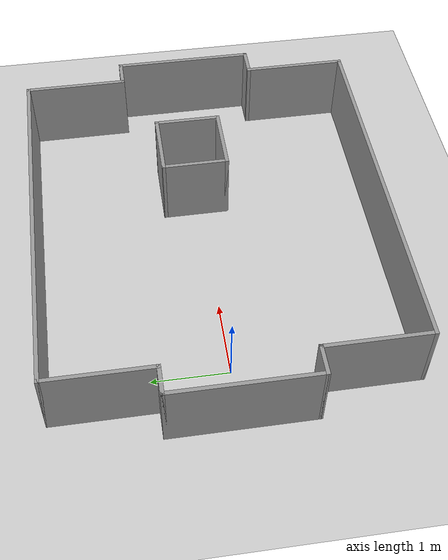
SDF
<sdf version="1.6">
 <world name="default">
  <light name="sun" type="directional">
   <pose>0 0 10 0 -0 0</pose>
   <diffuse>0.8 0.8 0.8 1</diffuse>
   <specular>0.2 0.2 0.2 1</specular>
   <attenuation>
    <range>1000</range>
    <constant>0.9</constant>
    <linear>0.01</linear>
    <quadratic>0.001</quadratic>
   </attenuation>
   <direction>-0.5 0.1 -0.9</direction>
  </light>
  <model name="ground_plane">
   <static>1</static>
   <link name="link">
    <collision name="collision">
     <geometry><plane><normal>0 0 1</normal><size>100 100</size></plane></geometry>
     <surface><friction><ode><mu>100</mu><mu2>50</mu2></ode></friction></surface>
    </collision>
    <visual name="visual">
     <cast_shadows>0</cast_shadows>
     <geometry><plane><normal>0 0 1</normal><size>100 100</size></plane></geometry>
     <material>
      <script><uri>file://media/materials/scripts/gazebo.material</uri><name>Gazebo/Grey</name></script>
     </material>
    </visual>
   </link>
  </model>
  <gravity>0 0 -9.8</gravity>
  <magnetic_field>6e-06 2.3e-05 -4.2e-05</magnetic_field>
  <atmosphere type="adiabatic"/>
  <physics name="default_physics" default="0" type="ode">
   <max_step_size>0.001</max_step_size>
   <real_time_factor>1</real_time_factor>
   <real_time_update_rate>1000</real_time_update_rate>
  </physics>
  <scene><ambient>0.4 0.4 0.4 1</ambient><background>0.7 0.7 0.7 1</background><shadows>1</shadows></scene>
  <spherical_coordinates>
   <surface_model>EARTH_WGS84</surface_model>
   <latitude_deg>0</latitude_deg>
   <longitude_deg>0</longitude_deg>
   <elevation>0</elevation>
   <heading_deg>0</heading_deg>
  </spherical_coordinates>
  <model name="rgarena2-0">
   <pose>2.02 -0.03 0 0 0 -1.56997</pose>
   <link name="Wall_0">
    <collision name="Wall_0_Collision">
     <geometry><box><size>4.9 0.05 1</size></box></geometry>
     <pose>0 0 0.5 0 -0 0</pose>
    </collision>
    <visual name="Wall_0_Visual">
     <pose>0 0 0.5 0 -0 0</pose>
     <geometry><box><size>4.9 0.05 1</size></box></geometry>
     <material>
      <script><uri>file://media/materials/scripts/gazebo.material</uri><name>Gazebo/Grey</name></script>
      <ambient>1 1 1 1</ambient>
     </material>
     <meta><layer>0</layer></meta>
    </visual>
    <pose>-2.275 -0 0 0 -0 -1.5708</pose>
   </link>
   <link name="Wall_1">
    <collision name="Wall_1_Collision">
     <geometry><box><size>1.4 0.05 1</size></box></geometry>
     <pose>0 0 0.5 0 -0 0</pose>
    </collision>
    <visual name="Wall_1_Visual">
     <pose>0 0 0.5 0 -0 0</pose>
     <geometry><box><size>1.4 0.05 1</size></box></geometry>
     <material>
      <script><uri>file://media/materials/scripts/gazebo.material</uri><name>Gazebo/Grey</name></script>
      <ambient>1 1 1 1</ambient>
     </material>
     <meta><layer>0</layer></meta>
    </visual>
    <pose>-1.6 -2.425 0 0 -0 0</pose>
   </link>
   <link name="Wall_13">
    <collision name="Wall_13_Collision">
     <geometry><box><size>1.9 0.05 1</size></box></geometry>
     <pose>0 0 0.5 0 -0 0</pose>
    </collision>
    <visual name="Wall_13_Visual">
     <pose>0 0 0.5 0 -0 0</pose>
     <geometry><box><size>1.9 0.05 1</size></box></geometry>
     <material>
      <script><uri>file://media/materials/scripts/gazebo.material</uri><name>Gazebo/Grey</name></script>
      <ambient>1 1 1 1</ambient>
     </material>
     <meta><layer>0</layer></meta>
    </visual>
    <pose>-0 2.775 0 0 -0 3.14159</pose>
   </link>
   <link name="Wall_14">
    <collision name="Wall_14_Collision">
     <geometry><box><size>0.4 0.05 1</size></box></geometry>
     <pose>0 0 0.5 0 -0 0</pose>
    </collision>
    <visual name="Wall_14_Visual">
     <pose>0 0 0.5 0 -0 0</pose>
     <geometry><box><size>0.4 0.05 1</size></box></geometry>
     <material>
      <script><uri>file://media/materials/scripts/gazebo.material</uri><name>Gazebo/Grey</name></script>
      <ambient>1 1 1 1</ambient>
     </material>
     <meta><layer>0</layer></meta>
    </visual>
    <pose>-0.925 2.6 0 0 -0 -1.5708</pose>
   </link>
   <link name="Wall_15">
    <collision name="Wall_15_Collision">
     <geometry><box><size>1.4 0.05 1</size></box></geometry>
     <pose>0 0 0.5 0 -0 0</pose>
    </collision>
    <visual name="Wall_15_Visual">
     <pose>0 0 0.5 0 -0 0</pose>
     <geometry><box><size>1.4 0.05 1</size></box></geometry>
     <material>
      <script><uri>file://media/materials/scripts/gazebo.material</uri><name>Gazebo/Grey</name></script>
      <ambient>1 1 1 1</ambient>
     </material>
     <meta><layer>0</layer></meta>
    </visual>
    <pose>-1.6 2.425 0 0 -0 3.14159</pose>
   </link>
   <link name="Wall_17">
    <collision name="Wall_17_Collision">
     <geometry><box><size>0.9 0.05 1</size></box></geometry>
     <pose>0 0 0.5 0 -0 0</pose>
    </collision>
    <visual name="Wall_17_Visual">
     <pose>0 0 0.5 0 -0 0</pose>
     <geometry><box><size>0.9 0.05 1</size></box></geometry>
     <material>
      <script><uri>file://media/materials/scripts/gazebo.material</uri><name>Gazebo/Grey</name></script>
      <ambient>1 1 1 1</ambient>
     </material>
     <meta><layer>0</layer></meta>
    </visual>
    <pose>-0.529 1.061 0 0 -0 -1.5708</pose>
   </link>
   <link name="Wall_18">
    <collision name="Wall_18_Collision">
     <geometry><box><size>0.9 0.05 1</size></box></geometry>
     <pose>0 0 0.5 0 -0 0</pose>
    </collision>
    <visual name="Wall_18_Visual">
     <pose>0 0 0.5 0 -0 0</pose>
     <geometry><box><size>0.9 0.05 1</size></box></geometry>
     <material>
      <script><uri>file://media/materials/scripts/gazebo.material</uri><name>Gazebo/Grey</name></script>
      <ambient>1 1 1 1</ambient>
     </material>
     <meta><layer>0</layer></meta>
    </visual>
    <pose>-0.104 0.636 0 0 -0 0</pose>
   </link>
   <link name="Wall_19">
    <collision name="Wall_19_Collision">
     <geometry><box><size>0.9 0.05 1</size></box></geometry>
     <pose>0 0 0.5 0 -0 0</pose>
    </collision>
    <visual name="Wall_19_Visual">
     <pose>0 0 0.5 0 -0 0</pose>
     <geometry><box><size>0.9 0.05 1</size></box></geometry>
     <material>
      <script><uri>file://media/materials/scripts/gazebo.material</uri><name>Gazebo/Grey</name></script>
      <ambient>1 1 1 1</ambient>
     </material>
     <meta><layer>0</layer></meta>
    </visual>
    <pose>0.321 1.061 0 0 -0 1.5708</pose>
   </link>
   <link name="Wall_2">
    <collision name="Wall_2_Collision">
     <geometry><box><size>0.4 0.05 1</size></box></geometry>
     <pose>0 0 0.5 0 -0 0</pose>
    </collision>
    <visual name="Wall_2_Visual">
     <pose>0 0 0.5 0 -0 0</pose>
     <geometry><box><size>0.4 0.05 1</size></box></geometry>
     <material>
      <script><uri>file://media/materials/scripts/gazebo.material</uri><name>Gazebo/Grey</name></script>
      <ambient>1 1 1 1</ambient>
     </material>
     <meta><layer>0</layer></meta>
    </visual>
    <pose>-0.925 -2.6 0 0 -0 -1.5708</pose>
   </link>
   <link name="Wall_20">
    <collision name="Wall_20_Collision">
     <geometry><box><size>0.9003 0.05 1</size></box></geometry>
     <pose>0 0 0.5 0 -0 0</pose>
    </collision>
    <visual name="Wall_20_Visual">
     <pose>0 0 0.5 0 -0 0</pose>
     <geometry><box><size>0.9003 0.05 1</size></box></geometry>
     <material>
      <script><uri>file://media/materials/scripts/gazebo.material</uri><name>Gazebo/Grey</name></script>
      <ambient>1 1 1 1</ambient>
     </material>
     <meta><layer>0</layer></meta>
    </visual>
    <pose>-0.104 1.486 0 0 -0 3.14159</pose>
   </link>
   <link name="Wall_3">
    <collision name="Wall_3_Collision">
     <geometry><box><size>1.9 0.05 1</size></box></geometry>
     <pose>0 0 0.5 0 -0 0</pose>
    </collision>
    <visual name="Wall_3_Visual">
     <pose>0 0 0.5 0 -0 0</pose>
     <geometry><box><size>1.9 0.05 1</size></box></geometry>
     <material>
      <script><uri>file://media/materials/scripts/gazebo.material</uri><name>Gazebo/Grey</name></script>
      <ambient>1 1 1 1</ambient>
     </material>
     <meta><layer>0</layer></meta>
    </visual>
    <pose>-0 -2.775 0 0 -0 0</pose>
   </link>
   <link name="Wall_4">
    <collision name="Wall_4_Collision">
     <geometry><box><size>0.4 0.05 1</size></box></geometry>
     <pose>0 0 0.5 0 -0 0</pose>
    </collision>
    <visual name="Wall_4_Visual">
     <pose>0 0 0.5 0 -0 0</pose>
     <geometry><box><size>0.4 0.05 1</size></box></geometry>
     <material>
      <script><uri>file://media/materials/scripts/gazebo.material</uri><name>Gazebo/Grey</name></script>
      <ambient>1 1 1 1</ambient>
     </material>
     <meta><layer>0</layer></meta>
    </visual>
    <pose>0.925 -2.6 0 0 -0 1.5708</pose>
   </link>
   <link name="Wall_5">
    <collision name="Wall_5_Collision">
     <geometry><box><size>1.4 0.05 1</size></box></geometry>
     <pose>0 0 0.5 0 -0 0</pose>
    </collision>
    <visual name="Wall_5_Visual">
     <pose>0 0 0.5 0 -0 0</pose>
     <geometry><box><size>1.4 0.05 1</size></box></geometry>
     <material>
      <script><uri>file://media/materials/scripts/gazebo.material</uri><name>Gazebo/Grey</name></script>
      <ambient>1 1 1 1</ambient>
     </material>
     <meta><layer>0</layer></meta>
    </visual>
    <pose>1.6 -2.425 0 0 -0 0</pose>
   </link>
   <link name="Wall_6">
    <collision name="Wall_6_Collision">
     <geometry><box><size>4.9 0.05 1</size></box></geometry>
     <pose>0 0 0.5 0 -0 0</pose>
    </collision>
    <visual name="Wall_6_Visual">
     <pose>0 0 0.5 0 -0 0</pose>
     <geometry><box><size>4.9 0.05 1</size></box></geometry>
     <material>
      <script><uri>file://media/materials/scripts/gazebo.material</uri><name>Gazebo/Grey</name></script>
      <ambient>1 1 1 1</ambient>
     </material>
     <meta><layer>0</layer></meta>
    </visual>
    <pose>2.275 -0 0 0 -0 1.5708</pose>
   </link>
   <link name="Wall_7">
    <collision name="Wall_7_Collision">
     <geometry><box><size>1.4 0.05 1</size></box></geometry>
     <pose>0 0 0.5 0 -0 0</pose>
    </collision>
    <visual name="Wall_7_Visual">
     <pose>0 0 0.5 0 -0 0</pose>
     <geometry><box><size>1.4 0.05 1</size></box></geometry>
     <material>
      <script><uri>file://media/materials/scripts/gazebo.material</uri><name>Gazebo/Grey</name></script>
      <ambient>1 1 1 1</ambient>
     </material>
     <meta><layer>0</layer></meta>
    </visual>
    <pose>1.6 2.425 0 0 -0 3.14159</pose>
   </link>
   <link name="Wall_9">
    <collision name="Wall_9_Collision">
     <geometry><box><size>0.4 0.05 1</size></box></geometry>
     <pose>0 0 0.5 0 -0 0</pose>
    </collision>
    <visual name="Wall_9_Visual">
     <pose>0 0 0.5 0 -0 0</pose>
     <geometry><box><size>0.4 0.05 1</size></box></geometry>
     <material>
      <script><uri>file://media/materials/scripts/gazebo.material</uri><name>Gazebo/Grey</name></script>
      <ambient>1 1 1 1</ambient>
     </material>
     <meta><layer>0</layer></meta>
    </visual>
    <pose>0.925 2.6 0 0 -0 1.5708</pose>
   </link>
   <static>1</static>
  </model>
 </world>
</sdf>
